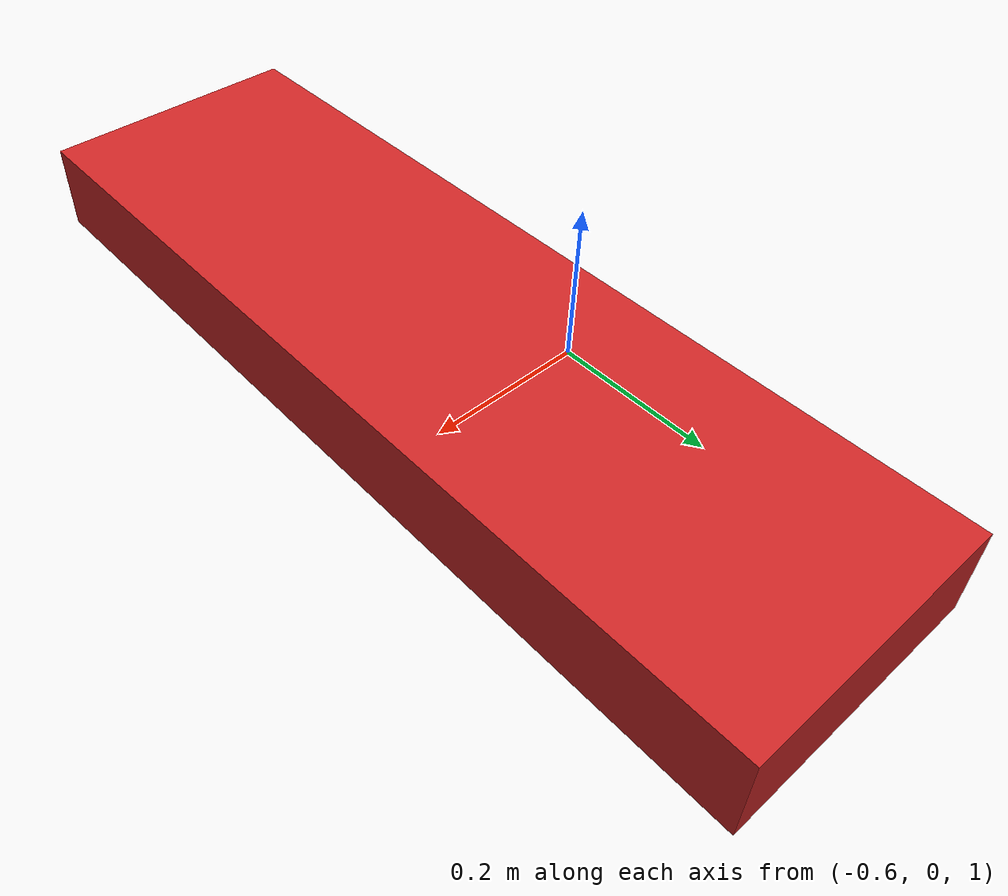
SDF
<sdf version="1.5">
  <physics type="dart">
  </physics>
  <model name="holding_box">
    <pose>-0.4 0.0 1.13 0 0 0</pose>
    <static>false</static>
    <link name="box">
        <collision name="collision">
            <geometry>
                <box>
                    <size>0.3 1.0 0.1</size>
                </box>
            </geometry>
        </collision>
        <visual name="visual">
            <geometry>
                <box>
                    <size>0.3 1.0 0.1</size>
                </box>
            </geometry>
            <material>
                <script>
                    <uri>file://media/materials/scripts/gazebo.material</uri>
                    <name>Gazebo/Red</name>
                </script>
        </material>
        </visual>
        <inertial>
            <mass>5.0</mass>
        </inertial>
    </link>
    <plugin name="link_attacher" filename='libgazebo_yarp_linkattacher.so'>
      <yarpConfigurationFile>model://iCub/conf_stickBot/link_attacher/linkattacher.ini</yarpConfigurationFile>
    </plugin>
  </model>
</sdf>
